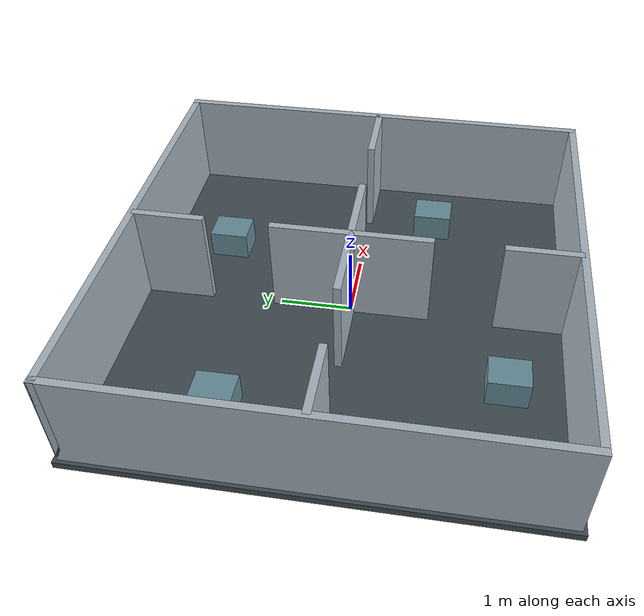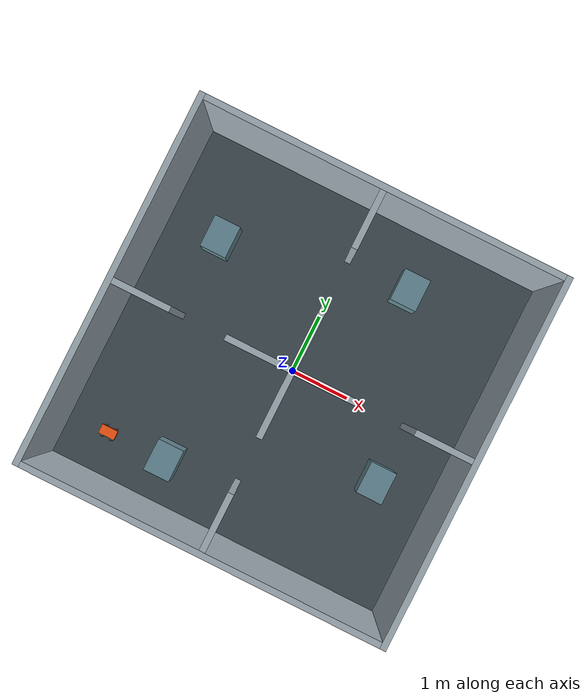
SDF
<?xml version='1.0' encoding='utf-8'?>
<sdf version="1.9">
  <world name="warm_lab">
    <physics name="physics" type="ignored">
      <max_step_size>0.001</max_step_size>
      <real_time_factor>1</real_time_factor>
    </physics>
    <plugin filename="gz-sim-physics-system" name="gz::sim::systems::Physics" />
    <plugin filename="gz-sim-user-commands-system" name="gz::sim::systems::UserCommands" />
    <plugin filename="gz-sim-scene-broadcaster-system" name="gz::sim::systems::SceneBroadcaster" />
    <plugin filename="gz-sim-sensors-system" name="gz::sim::systems::Sensors">
      <render_engine>ogre2</render_engine>
    </plugin>
    <light name="sun" type="directional">
      <pose>0 0 8 0 0 0</pose>
      <diffuse>.9 .9 .9 1</diffuse>
      <specular>.1 .1 .1 1</specular>
      <direction>-.2 -.3 -1</direction>
      <cast_shadows>true</cast_shadows>
    </light>
    <model name="floor">
      <static>true</static>
      <pose>0 0 -0.05 0 0 0</pose>
      <link name="body">
        <collision name="collision">
          <geometry>
            <box>
              <size>6.2 6.2 0.1</size>
            </box>
          </geometry>
        </collision>
        <visual name="visual">
          <geometry>
            <box>
              <size>6.2 6.2 0.1</size>
            </box>
          </geometry>
          <material>
            <ambient>.25 .3 .32 1</ambient>
            <diffuse>.25 .3 .32 1</diffuse>
          </material>
        </visual>
      </link>
    </model>
    <model name="west">
      <static>true</static>
      <pose>-3 0 0.7 0 0 0</pose>
      <link name="body">
        <collision name="collision">
          <geometry>
            <box>
              <size>0.1 6.1 1.4</size>
            </box>
          </geometry>
        </collision>
        <visual name="visual">
          <geometry>
            <box>
              <size>0.1 6.1 1.4</size>
            </box>
          </geometry>
          <material>
            <ambient>0.65 0.70 0.74 1</ambient>
            <diffuse>0.65 0.70 0.74 1</diffuse>
          </material>
        </visual>
      </link>
    </model>
    <model name="east">
      <static>true</static>
      <pose>3 0 0.7 0 0 0</pose>
      <link name="body">
        <collision name="collision">
          <geometry>
            <box>
              <size>0.1 6.1 1.4</size>
            </box>
          </geometry>
        </collision>
        <visual name="visual">
          <geometry>
            <box>
              <size>0.1 6.1 1.4</size>
            </box>
          </geometry>
          <material>
            <ambient>0.65 0.70 0.74 1</ambient>
            <diffuse>0.65 0.70 0.74 1</diffuse>
          </material>
        </visual>
      </link>
    </model>
    <model name="north">
      <static>true</static>
      <pose>0 3 0.7 0 0 0</pose>
      <link name="body">
        <collision name="collision">
          <geometry>
            <box>
              <size>6.1 0.1 1.4</size>
            </box>
          </geometry>
        </collision>
        <visual name="visual">
          <geometry>
            <box>
              <size>6.1 0.1 1.4</size>
            </box>
          </geometry>
          <material>
            <ambient>0.65 0.70 0.74 1</ambient>
            <diffuse>0.65 0.70 0.74 1</diffuse>
          </material>
        </visual>
      </link>
    </model>
    <model name="south">
      <static>true</static>
      <pose>0 -3 0.7 0 0 0</pose>
      <link name="body">
        <collision name="collision">
          <geometry>
            <box>
              <size>6.1 0.1 1.4</size>
            </box>
          </geometry>
        </collision>
        <visual name="visual">
          <geometry>
            <box>
              <size>6.1 0.1 1.4</size>
            </box>
          </geometry>
          <material>
            <ambient>0.65 0.70 0.74 1</ambient>
            <diffuse>0.65 0.70 0.74 1</diffuse>
          </material>
        </visual>
      </link>
    </model>
    <model name="vertical_0">
      <static>true</static>
      <pose>0 -2.5 0.7 0 0 0</pose>
      <link name="body">
        <collision name="collision">
          <geometry>
            <box>
              <size>0.1 1 1.4</size>
            </box>
          </geometry>
        </collision>
        <visual name="visual">
          <geometry>
            <box>
              <size>0.1 1 1.4</size>
            </box>
          </geometry>
          <material>
            <ambient>0.65 0.70 0.74 1</ambient>
            <diffuse>0.65 0.70 0.74 1</diffuse>
          </material>
        </visual>
      </link>
    </model>
    <model name="horizontal_0">
      <static>true</static>
      <pose>-2.5 0 0.7 0 0 0</pose>
      <link name="body">
        <collision name="collision">
          <geometry>
            <box>
              <size>1 0.1 1.4</size>
            </box>
          </geometry>
        </collision>
        <visual name="visual">
          <geometry>
            <box>
              <size>1 0.1 1.4</size>
            </box>
          </geometry>
          <material>
            <ambient>0.65 0.70 0.74 1</ambient>
            <diffuse>0.65 0.70 0.74 1</diffuse>
          </material>
        </visual>
      </link>
    </model>
    <model name="vertical_1">
      <static>true</static>
      <pose>0 0 0.7 0 0 0</pose>
      <link name="body">
        <collision name="collision">
          <geometry>
            <box>
              <size>0.1 2.2 1.4</size>
            </box>
          </geometry>
        </collision>
        <visual name="visual">
          <geometry>
            <box>
              <size>0.1 2.2 1.4</size>
            </box>
          </geometry>
          <material>
            <ambient>0.65 0.70 0.74 1</ambient>
            <diffuse>0.65 0.70 0.74 1</diffuse>
          </material>
        </visual>
      </link>
    </model>
    <model name="horizontal_1">
      <static>true</static>
      <pose>0 0 0.7 0 0 0</pose>
      <link name="body">
        <collision name="collision">
          <geometry>
            <box>
              <size>2.2 0.1 1.4</size>
            </box>
          </geometry>
        </collision>
        <visual name="visual">
          <geometry>
            <box>
              <size>2.2 0.1 1.4</size>
            </box>
          </geometry>
          <material>
            <ambient>0.65 0.70 0.74 1</ambient>
            <diffuse>0.65 0.70 0.74 1</diffuse>
          </material>
        </visual>
      </link>
    </model>
    <model name="vertical_2">
      <static>true</static>
      <pose>0 2.5 0.7 0 0 0</pose>
      <link name="body">
        <collision name="collision">
          <geometry>
            <box>
              <size>0.1 1 1.4</size>
            </box>
          </geometry>
        </collision>
        <visual name="visual">
          <geometry>
            <box>
              <size>0.1 1 1.4</size>
            </box>
          </geometry>
          <material>
            <ambient>0.65 0.70 0.74 1</ambient>
            <diffuse>0.65 0.70 0.74 1</diffuse>
          </material>
        </visual>
      </link>
    </model>
    <model name="horizontal_2">
      <static>true</static>
      <pose>2.5 0 0.7 0 0 0</pose>
      <link name="body">
        <collision name="collision">
          <geometry>
            <box>
              <size>1 0.1 1.4</size>
            </box>
          </geometry>
        </collision>
        <visual name="visual">
          <geometry>
            <box>
              <size>1 0.1 1.4</size>
            </box>
          </geometry>
          <material>
            <ambient>0.65 0.70 0.74 1</ambient>
            <diffuse>0.65 0.70 0.74 1</diffuse>
          </material>
        </visual>
      </link>
    </model>
    <model name="carton_0">
      <static>true</static>
      <pose>-1.2 -2.2 0.2 0 0 0</pose>
      <link name="body">
        <collision name="collision">
          <geometry>
            <box>
              <size>0.45 0.55 0.4</size>
            </box>
          </geometry>
        </collision>
        <visual name="visual">
          <geometry>
            <box>
              <size>0.45 0.55 0.4</size>
            </box>
          </geometry>
          <material>
            <ambient>.4 .55 .6 1</ambient>
            <diffuse>.4 .55 .6 1</diffuse>
          </material>
        </visual>
      </link>
    </model>
    <model name="carton_1">
      <static>true</static>
      <pose>-2.0 1.4 0.2 0 0 0</pose>
      <link name="body">
        <collision name="collision">
          <geometry>
            <box>
              <size>0.45 0.55 0.4</size>
            </box>
          </geometry>
        </collision>
        <visual name="visual">
          <geometry>
            <box>
              <size>0.45 0.55 0.4</size>
            </box>
          </geometry>
          <material>
            <ambient>.4 .55 .6 1</ambient>
            <diffuse>.4 .55 .6 1</diffuse>
          </material>
        </visual>
      </link>
    </model>
    <model name="carton_2">
      <static>true</static>
      <pose>1.1 2.0 0.2 0 0 0</pose>
      <link name="body">
        <collision name="collision">
          <geometry>
            <box>
              <size>0.45 0.55 0.4</size>
            </box>
          </geometry>
        </collision>
        <visual name="visual">
          <geometry>
            <box>
              <size>0.45 0.55 0.4</size>
            </box>
          </geometry>
          <material>
            <ambient>.4 .55 .6 1</ambient>
            <diffuse>.4 .55 .6 1</diffuse>
          </material>
        </visual>
      </link>
    </model>
    <model name="carton_3">
      <static>true</static>
      <pose>2 -1 0.2 0 0 0</pose>
      <link name="body">
        <collision name="collision">
          <geometry>
            <box>
              <size>0.45 0.55 0.4</size>
            </box>
          </geometry>
        </collision>
        <visual name="visual">
          <geometry>
            <box>
              <size>0.45 0.55 0.4</size>
            </box>
          </geometry>
          <material>
            <ambient>.4 .55 .6 1</ambient>
            <diffuse>.4 .55 .6 1</diffuse>
          </material>
        </visual>
      </link>
    </model>
    <model name="warm_wheels">
      <pose>-2.25 -2.25 0.01 0 0 0</pose>
      <link name="chassis">
        <pose>0 0 0.065 0 0 0</pose>
        <inertial>
          <mass>1.0</mass>
          <inertia>
            <ixx>0.002</ixx>
            <iyy>0.0065</iyy>
            <izz>0.007</izz>
            <ixy>0</ixy>
            <ixz>0</ixz>
            <iyz>0</iyz>
          </inertia>
        </inertial>
        <collision name="body_collision">
          <geometry>
            <box>
              <size>0.28 0.16 0.055</size>
            </box>
          </geometry>
        </collision>
        <visual name="body_visual">
          <geometry>
            <box>
              <size>0.28 0.16 0.055</size>
            </box>
          </geometry>
          <material>
            <ambient>1 0.35 0.08 1</ambient>
            <diffuse>1 0.35 0.08 1</diffuse>
          </material>
        </visual>
        <sensor name="rgbd" type="rgbd_camera">
          <pose>0.11 0 0.145 0 0 0</pose>
          <topic>/warm_wheels/rgbd</topic>
          <always_on>true</always_on>
          <update_rate>15</update_rate>
          <camera>
            <horizontal_fov>1.2</horizontal_fov>
            <image>
              <width>640</width>
              <height>480</height>
              <format>R8G8B8</format>
            </image>
            <clip>
              <near>0.1</near>
              <far>6.0</far>
            </clip>
          </camera>
        </sensor>
      </link>
      <link name="left_front_wheel">
        <pose>0.085 0.1 0.033 1.57079632679 0 0</pose>
        <inertial>
          <mass>0.06</mass>
          <inertia>
            <ixx>1.8e-05</ixx>
            <iyy>1.8e-05</iyy>
            <izz>3.3e-05</izz>
            <ixy>0</ixy>
            <ixz>0</ixz>
            <iyz>0</iyz>
          </inertia>
        </inertial>
        <visual name="left_front_wheel_visual">
          <geometry>
            <cylinder>
              <radius>0.033</radius>
              <length>0.025</length>
            </cylinder>
          </geometry>
          <material>
            <ambient>.08 .08 .08 1</ambient>
            <diffuse>.08 .08 .08 1</diffuse>
          </material>
        </visual>
        <collision name="left_front_wheel_collision">
          <geometry>
            <cylinder>
              <radius>0.033</radius>
              <length>0.025</length>
            </cylinder>
          </geometry>
          <surface>
            <friction>
              <ode>
                <mu>0.8</mu>
                <mu2>0.8</mu2>
              </ode>
            </friction>
          </surface>
        </collision>
      </link>
      <joint name="left_front_wheel_joint" type="revolute">
        <parent>chassis</parent>
        <child>left_front_wheel</child>
        <axis>
          <xyz expressed_in="__model__">0 1 0</xyz>
          <limit>
            <lower>-1e+16</lower>
            <upper>1e+16</upper>
            <effort>0.3</effort>
            <velocity>10</velocity>
          </limit>
        </axis>
      </joint>
      <link name="left_rear_wheel">
        <pose>-0.085 0.1 0.033 1.57079632679 0 0</pose>
        <inertial>
          <mass>0.06</mass>
          <inertia>
            <ixx>1.8e-05</ixx>
            <iyy>1.8e-05</iyy>
            <izz>3.3e-05</izz>
            <ixy>0</ixy>
            <ixz>0</ixz>
            <iyz>0</iyz>
          </inertia>
        </inertial>
        <visual name="left_rear_wheel_visual">
          <geometry>
            <cylinder>
              <radius>0.033</radius>
              <length>0.025</length>
            </cylinder>
          </geometry>
          <material>
            <ambient>.08 .08 .08 1</ambient>
            <diffuse>.08 .08 .08 1</diffuse>
          </material>
        </visual>
        <collision name="left_rear_wheel_collision">
          <geometry>
            <cylinder>
              <radius>0.033</radius>
              <length>0.025</length>
            </cylinder>
          </geometry>
          <surface>
            <friction>
              <ode>
                <mu>0.8</mu>
                <mu2>0.8</mu2>
              </ode>
            </friction>
          </surface>
        </collision>
      </link>
      <joint name="left_rear_wheel_joint" type="revolute">
        <parent>chassis</parent>
        <child>left_rear_wheel</child>
        <axis>
          <xyz expressed_in="__model__">0 1 0</xyz>
          <limit>
            <lower>-1e+16</lower>
            <upper>1e+16</upper>
            <effort>0.3</effort>
            <velocity>10</velocity>
          </limit>
        </axis>
      </joint>
      <link name="right_front_wheel">
        <pose>0.085 -0.1 0.033 1.57079632679 0 0</pose>
        <inertial>
          <mass>0.06</mass>
          <inertia>
            <ixx>1.8e-05</ixx>
            <iyy>1.8e-05</iyy>
            <izz>3.3e-05</izz>
            <ixy>0</ixy>
            <ixz>0</ixz>
            <iyz>0</iyz>
          </inertia>
        </inertial>
        <visual name="right_front_wheel_visual">
          <geometry>
            <cylinder>
              <radius>0.033</radius>
              <length>0.025</length>
            </cylinder>
          </geometry>
          <material>
            <ambient>.08 .08 .08 1</ambient>
            <diffuse>.08 .08 .08 1</diffuse>
          </material>
        </visual>
        <collision name="right_front_wheel_collision">
          <geometry>
            <cylinder>
              <radius>0.033</radius>
              <length>0.025</length>
            </cylinder>
          </geometry>
          <surface>
            <friction>
              <ode>
                <mu>0.8</mu>
                <mu2>0.8</mu2>
              </ode>
            </friction>
          </surface>
        </collision>
      </link>
      <joint name="right_front_wheel_joint" type="revolute">
        <parent>chassis</parent>
        <child>right_front_wheel</child>
        <axis>
          <xyz expressed_in="__model__">0 1 0</xyz>
          <limit>
            <lower>-1e+16</lower>
            <upper>1e+16</upper>
            <effort>0.3</effort>
            <velocity>10</velocity>
          </limit>
        </axis>
      </joint>
      <link name="right_rear_wheel">
        <pose>-0.085 -0.1 0.033 1.57079632679 0 0</pose>
        <inertial>
          <mass>0.06</mass>
          <inertia>
            <ixx>1.8e-05</ixx>
            <iyy>1.8e-05</iyy>
            <izz>3.3e-05</izz>
            <ixy>0</ixy>
            <ixz>0</ixz>
            <iyz>0</iyz>
          </inertia>
        </inertial>
        <visual name="right_rear_wheel_visual">
          <geometry>
            <cylinder>
              <radius>0.033</radius>
              <length>0.025</length>
            </cylinder>
          </geometry>
          <material>
            <ambient>.08 .08 .08 1</ambient>
            <diffuse>.08 .08 .08 1</diffuse>
          </material>
        </visual>
        <collision name="right_rear_wheel_collision">
          <geometry>
            <cylinder>
              <radius>0.033</radius>
              <length>0.025</length>
            </cylinder>
          </geometry>
          <surface>
            <friction>
              <ode>
                <mu>0.8</mu>
                <mu2>0.8</mu2>
              </ode>
            </friction>
          </surface>
        </collision>
      </link>
      <joint name="right_rear_wheel_joint" type="revolute">
        <parent>chassis</parent>
        <child>right_rear_wheel</child>
        <axis>
          <xyz expressed_in="__model__">0 1 0</xyz>
          <limit>
            <lower>-1e+16</lower>
            <upper>1e+16</upper>
            <effort>0.3</effort>
            <velocity>10</velocity>
          </limit>
        </axis>
      </joint>
      <plugin filename="gz-sim-diff-drive-system" name="gz::sim::systems::DiffDrive">
        <left_joint>left_front_wheel_joint</left_joint>
        <left_joint>left_rear_wheel_joint</left_joint>
        <right_joint>right_front_wheel_joint</right_joint>
        <right_joint>right_rear_wheel_joint</right_joint>
        <wheel_separation>0.2</wheel_separation>
        <wheel_radius>0.033</wheel_radius>
        <topic>/warm_wheels/cmd_vel</topic>
        <odom_topic>/warm_wheels/odometry</odom_topic>
        <odom_publish_frequency>15</odom_publish_frequency>
        <frame_id>odom</frame_id>
        <child_frame_id>chassis</child_frame_id>
        <max_linear_velocity>0.15</max_linear_velocity>
        <min_linear_velocity>-0.15</min_linear_velocity>
        <max_angular_velocity>0.5</max_angular_velocity>
        <min_angular_velocity>-0.5</min_angular_velocity>
        <max_linear_acceleration>0.15</max_linear_acceleration>
        <min_linear_acceleration>-0.15</min_linear_acceleration>
      </plugin>
    </model>
  </world>
</sdf>
